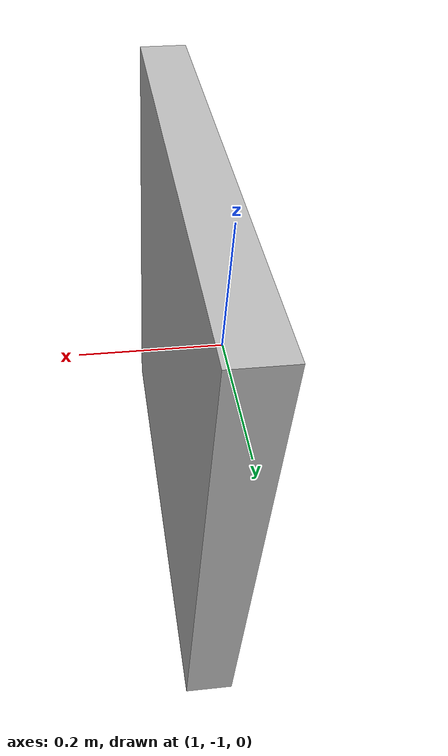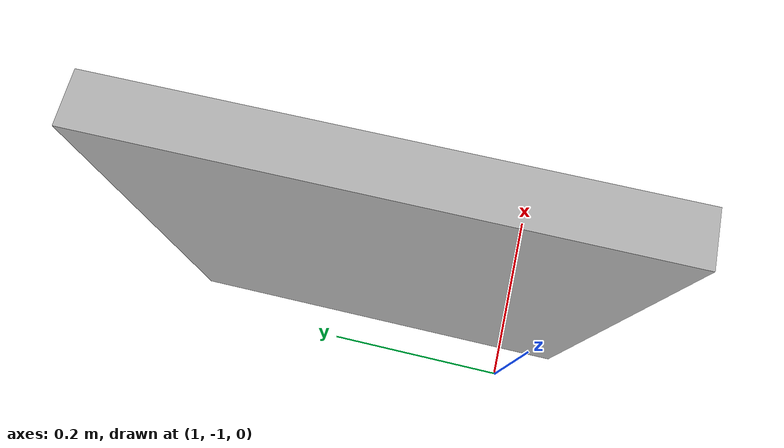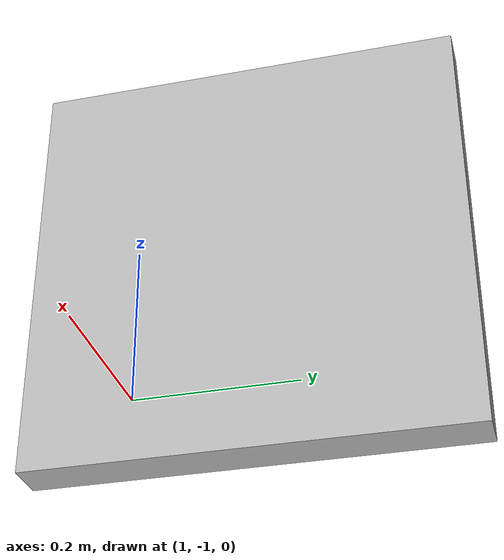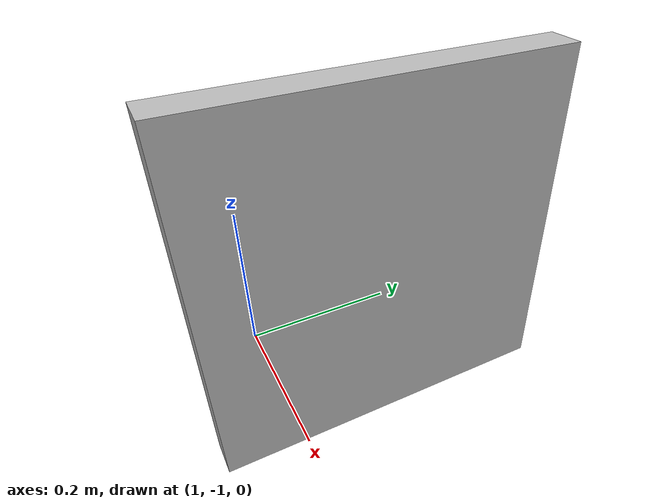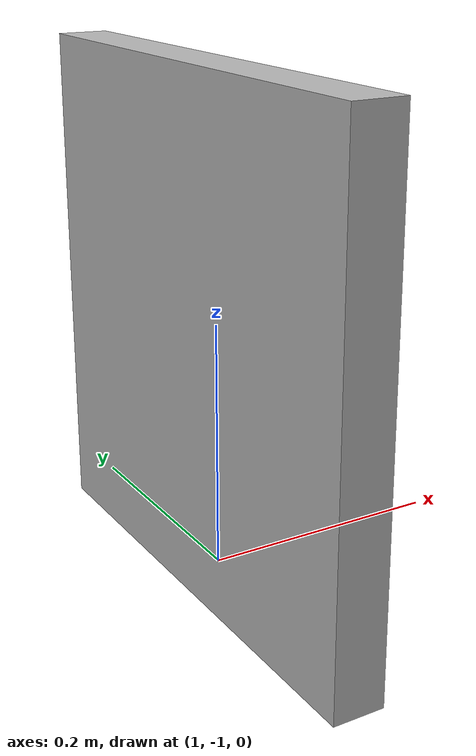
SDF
<?xml version="1.0" ?>
<sdf version="1.6">
  <model name="traffic_left">
    <static>true</static>
    <link name="box">
      <pose>1.08 -0.838 0.125 0 -0 -1.57</pose>
      <collision name="collision">
        <geometry>
          <box>
            <size>0.5 0.025 0.5</size>
          </box>
        </geometry>
      </collision>
      <visual name="visual">
        <geometry>
          <box>
            <size>0.5 0.05 0.5</size>
          </box>
        </geometry>
        <material>
          <script>
            <uri>file:///ws_slam/src/Autonomous_Navigation_TurtleBot/src/autonomous_tb3/world/tags/apriltag_working/materials/scripts</uri>
            <uri>file:///ws_slam/src/Autonomous_Navigation_TurtleBot/src/autonomous_tb3/world/tags/apriltag_working/materials/textures</uri>
            <name>traffic_left</name>
          </script>
        </material>
      </visual>
    </link>
  </model>
</sdf>
